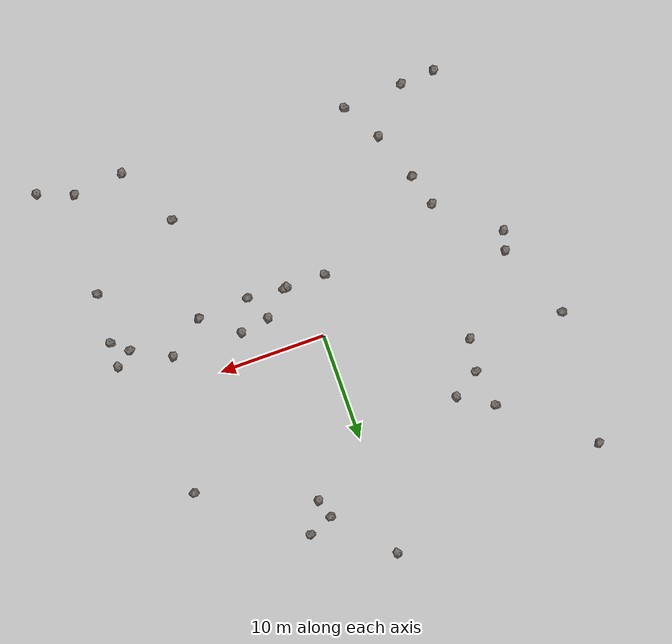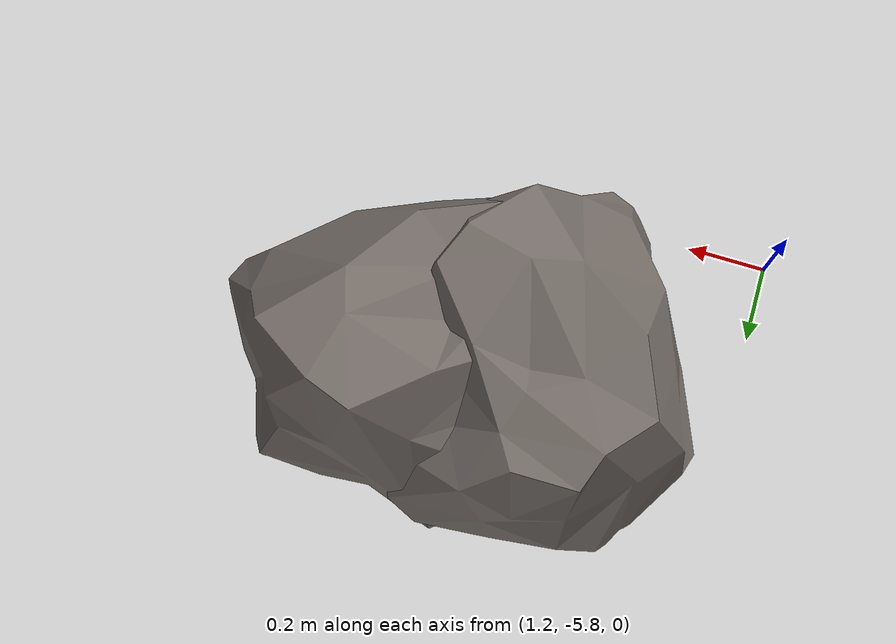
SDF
<sdf version="1.6">
 <world name="benchmark_map">
  <include><uri>model://ground_plane</uri></include>
  <include><uri>model://sun</uri></include>
  <include>
   <uri>model://Falling Rock 2</uri>
   <name>rock_big_2</name>
   <pose>17.252 -19.859 0 0 0 2.087</pose>
  </include>
  <include>
   <uri>model://Falling Rock 2</uri>
   <name>rock_big_7</name>
   <pose>-20.587 17.679 0 0 0 1.667</pose>
  </include>
  <include>
   <uri>model://Falling Rock 2</uri>
   <name>rock_big_9</name>
   <pose>-12.605 4.683 0 0 0 5.085</pose>
  </include>
  <include>
   <uri>model://Falling Rock 2</uri>
   <name>rock_big_11</name>
   <pose>7.166 16.774 0 0 0 4.200</pose>
  </include>
  <include>
   <uri>model://Falling Rock 2</uri>
   <name>rock_big_14</name>
   <pose>-18.348 -1.859 0 0 0 2.112</pose>
  </include>
  <include>
   <uri>model://Small Rock Fall</uri>
   <name>rock_small_16</name>
   <pose>17.594 5.968 0 0 0 6.057</pose>
  </include>
  <include><uri>model://Falling Rock 2</uri><name>rock_big_17</name><pose>2 -5.31 0 0 0 1.116</pose></include>
  <include>
   <uri>model://Falling Rock 2</uri>
   <name>rock_big_29</name>
   <pose>12.518 -20.285 0 0 0 5.475</pose>
  </include>
  <include>
   <uri>model://Small Rock Fall</uri>
   <name>rock_small_30</name>
   <pose>-13.025 -12.922 0 0 0 5.597</pose>
  </include>
  <include>
   <uri>model://Small Rock Fall</uri>
   <name>rock_small_32</name>
   <pose>-6.831 1.620 0 0 0 5.083</pose>
  </include>
  <include>
   <uri>model://Falling Rock 2</uri>
   <name>rock_big_39</name>
   <pose>-18.815 -3.667 0 0 0 5.211</pose>
  </include>
  <include>
   <uri>model://Falling Rock 2</uri>
   <name>rock_big_49</name>
   <pose>-14.415 -19.495 0 0 0 4.799</pose>
  </include>
  <include>
   <uri>model://Falling Rock 2</uri>
   <name>rock_big_56</name>
   <pose>6.984 -2.812 0 0 0 2.451</pose>
  </include>
  <include>
   <uri>model://Small Rock Fall</uri>
   <name>rock_small_59</name>
   <pose>-9.083 -12.325 0 0 0 0.664</pose>
  </include>
  <include>
   <uri>model://Falling Rock 2</uri>
   <name>rock_big_83</name>
   <pose>-13.416 -8.156 0 0 0 4.928</pose>
  </include>
  <include>
   <uri>model://Falling Rock 2</uri>
   <name>rock_big_85</name>
   <pose>13.639 -2.837 0 0 0 2.294</pose>
  </include>
  <include>
   <uri>model://Falling Rock 2</uri>
   <name>rock_big_86</name>
   <pose>-17.643 -19.663 0 0 0 1.957</pose>
  </include>
  <include>
   <uri>model://Small Rock Fall</uri>
   <name>rock_small_90</name>
   <pose>-15.307 11.132 0 0 0 3.774</pose>
  </include>
  <include>
   <uri>model://Falling Rock 2</uri>
   <name>rock_big_91</name>
   <pose>5.458 14.090 0 0 0 2.335</pose>
  </include>
  <include><uri>model://Falling Rock 2</uri><name>rock_big_92</name><pose>-2 -5.31 0 0 0 3.535</pose></include>
  <include>
   <uri>model://Small Rock Fall</uri>
   <name>rock_small_100</name>
   <pose>-20.878 -19.866 0 0 0 2.294</pose>
  </include>
  <include>
   <uri>model://Falling Rock 2</uri>
   <name>rock_big_104</name>
   <pose>20.501 -21.068 0 0 0 2.642</pose>
  </include>
  <include>
   <uri>model://Falling Rock 2</uri>
   <name>rock_big_107</name>
   <pose>-12.556 -11.149 0 0 0 1.393</pose>
  </include>
  <include>
   <uri>model://Falling Rock 2</uri>
   <name>rock_big_115</name>
   <pose>0.248 21.042 0 0 0 5.929</pose>
  </include>
  <include>
   <uri>model://Falling Rock 2</uri>
   <name>rock_big_119</name>
   <pose>18.306 -10.557 0 0 0 0.580</pose>
  </include>
  <include>
   <uri>model://Small Rock Fall</uri>
   <name>rock_small_122</name>
   <pose>8.053 -21.257 0 0 0 6.181</pose>
  </include>
  <include>
   <uri>model://Falling Rock 2</uri>
   <name>rock_big_135</name>
   <pose>5.423 -5.628 0 0 0 0.994</pose>
  </include>
  <include>
   <uri>model://Falling Rock 2</uri>
   <name>rock_big_137</name>
   <pose>-10.856 -15.618 0 0 0 2.403</pose>
  </include>
  <include>
   <uri>model://Falling Rock 2</uri>
   <name>rock_big_144</name>
   <pose>17.210 -4.698 0 0 0 4.394</pose>
  </include>
  <include>
   <uri>model://Falling Rock 2</uri>
   <name>rock_big_148</name>
   <pose>-12.131 7.702 0 0 0 4.301</pose>
  </include>
  <include>
   <uri>model://Small Rock Fall</uri>
   <name>rock_small_155</name>
   <pose>1.766 -19.634 0 0 0 6.255</pose>
  </include>
  <include>
   <uri>model://Small Rock Fall</uri>
   <name>rock_small_157</name>
   <pose>17.393 -13.836 0 0 0 1.598</pose>
  </include>
  <include>
   <uri>model://Falling Rock 2</uri>
   <name>rock_big_162</name>
   <pose>-8.772 -19.154 0 0 0 3.388</pose>
  </include>
  <include>
   <uri>model://Falling Rock 2</uri>
   <name>rock_big_163</name>
   <pose>4.253 -3.268 0 0 0 2.390</pose>
  </include>
  <include>
   <uri>model://Falling Rock 2</uri>
   <name>rock_big_165</name>
   <pose>10.254 -5.343 0 0 0 1.775</pose>
  </include>
  <include>
   <uri>model://Falling Rock 2</uri>
   <name>rock_big_166</name>
   <pose>15.991 9.637 0 0 0 1.159</pose>
  </include>
  <include>
   <uri>model://Falling Rock 2</uri>
   <name>rock_big_172</name>
   <pose>1.7 -5.37 0 0 0 5.779</pose>
  </include>
  <include>
   <uri>model://Falling Rock 2</uri>
   <name>rock_big_176</name>
   <pose>-21.392 5.208 0 0 0 0.696</pose>
  </include>
  <include>
   <uri>model://Small Rock Fall</uri>
   <name>rock_small_178</name>
   <pose>-15.759 8.550 0 0 0 0.908</pose>
  </include>
  <include>
   <uri>model://Falling Rock 2</uri>
   <name>rock_big_179</name>
   <pose>-12.800 11.212 0 0 0 3.649</pose>
  </include>
  <include>
   <uri>model://Falling Rock 2</uri>
   <name>rock_big_186</name>
   <pose>9.557 -14.706 0 0 0 4.084</pose>
  </include>
  <include>
   <uri>model://Small Rock Fall</uri>
   <name>rock_small_214</name>
   <pose>-13.921 -21.354 0 0 0 4.825</pose>
  </include>
  <include>
   <uri>model://Falling Rock 2</uri>
   <name>rock_big_220</name>
   <pose>4.896 15.858 0 0 0 0.985</pose>
  </include>
  <include>
   <uri>model://Falling Rock 2</uri>
   <name>rock_big_225</name>
   <pose>18.646 -5.931 0 0 0 3.591</pose>
  </include>
  <include>
   <uri>model://Falling Rock 2</uri>
   <name>rock_big_232</name>
   <pose>18.745 -3.616 0 0 0 5.906</pose>
  </include>
  <include>
   <uri>model://Small Rock Fall</uri>
   <name>rock_small_234</name>
   <pose>5.119 -13.569 0 0 0 4.626</pose>
  </include>
  <include>
   <uri>model://Falling Rock 2</uri>
   <name>rock_big_235</name>
   <pose>-9.655 9.314 0 0 0 2.582</pose>
  </include>
  <include>
   <uri>model://Small Rock Fall</uri>
   <name>rock_small_238</name>
   <pose>10.619 9.406 0 0 0 0.473</pose>
  </include>
 </world>
</sdf>

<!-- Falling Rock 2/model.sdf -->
<sdf version="1.6">
  <model name="falling_rock2">
    <link name="base_link">
      <inertial>
        <pose>-0.014732 -0.014451 0.003710 0 0 0</pose>
        <mass>646.508</mass>
        <inertia>
          <ixx>49.62</ixx>
          <ixy>4.08</ixy>
          <ixz>-0.324</ixz>
          <iyy>46.472</iyy>
          <iyz>-3.926</iyz>
          <izz>51.062</izz>
        </inertia>
      </inertial>
      <collision name="collision">
        <geometry>
          <mesh>
            <uri>meshes/FallingRock02_Collider.dae</uri>
          </mesh>
        </geometry>
      </collision>

      <visual name="visual">
        <geometry>
          <mesh>
            <uri>meshes/FallingRock02.dae</uri>
          </mesh>
        </geometry>
        <!-- Keep material local-only to avoid unresolved model:// URIs -->
        <material>
          <ambient>0.38 0.35 0.33 1.0</ambient>
          <diffuse>0.45 0.42 0.40 1.0</diffuse>
          <specular>0.08 0.08 0.08 1.0</specular>
        </material>
      </visual>
    </link>
  </model>
</sdf>

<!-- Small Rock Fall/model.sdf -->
<sdf version="1.6">
  <model name="small_rock_fall">
    <static>true</static>
    <!--Uncomment "base_link" and its contents for previewing the rocks-->
    <plugin filename="libignition-gazebo-breadcrumbs-system.so" name="ignition::gazebo::systems::Breadcrumbs">
      <max_deployments>5</max_deployments>
      <disable_physics_time>15</disable_physics_time>
      <allow_renaming>true</allow_renaming>
      <breadcrumb>
        <sdf version="1.6">
          <include>
            <uri>https://fuel.ignitionrobotics.org/1.0/OpenRobotics/models/Falling Rock 6</uri>
            <name>Rock</name>
            <pose>0 0.027399 0.109854 0 -0 0</pose>
          </include>
        </sdf>
      </breadcrumb>
    </plugin>
    <plugin filename="libignition-gazebo-breadcrumbs-system.so" name="ignition::gazebo::systems::Breadcrumbs">
      <max_deployments>5</max_deployments>
      <disable_physics_time>15</disable_physics_time>
      <allow_renaming>true</allow_renaming>
      <breadcrumb>
        <sdf version="1.6">
          <include>
            <uri>https://fuel.ignitionrobotics.org/1.0/OpenRobotics/models/Falling Rock 6</uri>
            <name>Rock</name>
            <pose>-0.134528 0 0 0 -0 0</pose>
          </include>
        </sdf>
      </breadcrumb>
    </plugin>
    <plugin filename="libignition-gazebo-breadcrumbs-system.so" name="ignition::gazebo::systems::Breadcrumbs">
      <max_deployments>5</max_deployments>
      <disable_physics_time>15</disable_physics_time>
      <allow_renaming>true</allow_renaming>
      <breadcrumb>
        <sdf version="1.6">
          <include>
            <uri>https://fuel.ignitionrobotics.org/1.0/OpenRobotics/models/Falling Rock 6</uri>
            <name>Rock</name>
            <pose>0 0.103163 0 0 -0 0</pose>
          </include>
        </sdf>
      </breadcrumb>
    </plugin>
    <plugin filename="libignition-gazebo-breadcrumbs-system.so" name="ignition::gazebo::systems::Breadcrumbs">
      <max_deployments>5</max_deployments>
      <disable_physics_time>15</disable_physics_time>
      <allow_renaming>true</allow_renaming>
      <breadcrumb>
        <sdf version="1.6">
          <include>
            <uri>https://fuel.ignitionrobotics.org/1.0/OpenRobotics/models/Falling Rock 6</uri>
            <name>Rock</name>
            <pose>0.060517 -0.10277 0.000346 -0.508176 -0.296696 1.08741</pose>
          </include>
        </sdf>
      </breadcrumb>
    </plugin>
    <plugin filename="libignition-gazebo-breadcrumbs-system.so" name="ignition::gazebo::systems::Breadcrumbs">
      <max_deployments>5</max_deployments>
      <disable_physics_time>15</disable_physics_time>
      <allow_renaming>true</allow_renaming>
      <breadcrumb>
        <sdf version="1.6">
          <include>
            <uri>https://fuel.ignitionrobotics.org/1.0/OpenRobotics/models/Falling Rock 6</uri>
            <name>Rock</name>
            <pose>0.099166 0 0 0 -0 0</pose>
          </include>
        </sdf>
      </breadcrumb>
    </plugin>
    <plugin filename="libignition-gazebo-breadcrumbs-system.so" name="ignition::gazebo::systems::Breadcrumbs">
      <max_deployments>5</max_deployments>
      <disable_physics_time>15</disable_physics_time>
      <allow_renaming>true</allow_renaming>
      <breadcrumb>
        <sdf version="1.6">
          <include>
            <uri>https://fuel.ignitionrobotics.org/1.0/OpenRobotics/models/Falling Rock 6</uri>
            <name>Rock</name>
            <pose>0 -0.103685 0.101457 0 0 -1.12847</pose>
          </include>
        </sdf>
      </breadcrumb>
    </plugin>
    <plugin filename="libignition-gazebo-breadcrumbs-system.so" name="ignition::gazebo::systems::Breadcrumbs">
      <max_deployments>5</max_deployments>
      <disable_physics_time>15</disable_physics_time>
      <allow_renaming>true</allow_renaming>
      <breadcrumb>
        <sdf version="1.6">
          <include>
            <uri>https://fuel.ignitionrobotics.org/1.0/OpenRobotics/models/Falling Rock 6</uri>
            <name>Rock</name>
            <pose>-0.015971 0 0 0 -0 0</pose>
          </include>
        </sdf>
      </breadcrumb>
    </plugin>
  </model>
</sdf>
